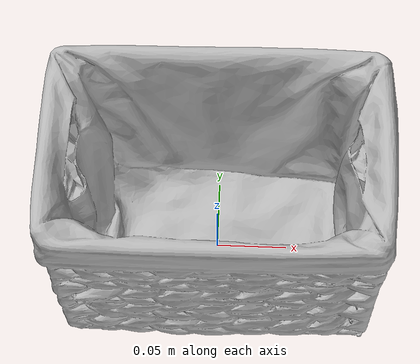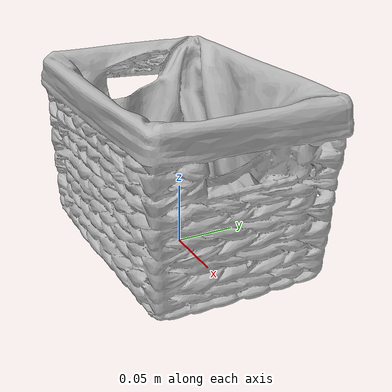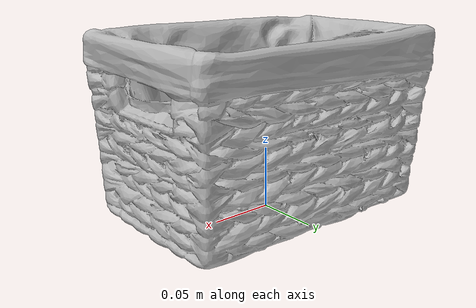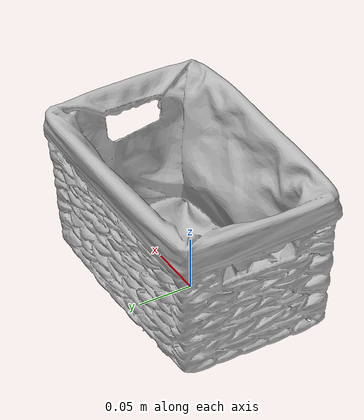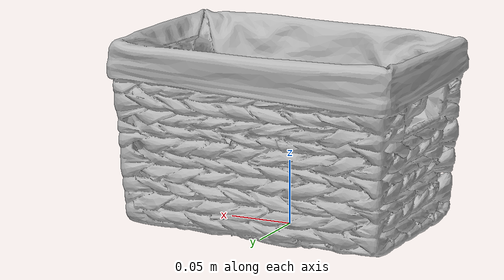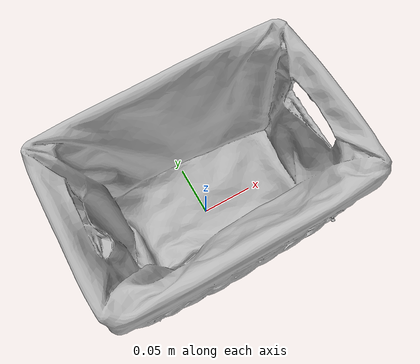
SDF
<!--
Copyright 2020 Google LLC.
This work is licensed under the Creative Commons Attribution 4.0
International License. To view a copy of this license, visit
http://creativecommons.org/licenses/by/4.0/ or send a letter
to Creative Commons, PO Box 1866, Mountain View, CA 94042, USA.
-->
<?xml version="1.0" ?>
<sdf version="1.6">
  <model name="Threshold_Basket_Natural_Finish_Fabric_Liner_Small">
    <link name="link_0">
      <visual name="visual">
        <geometry>
          <mesh>
            <uri>meshes/model.obj</uri>
          </mesh>
        </geometry>
      </visual>
      <collision name="collision_0">
        <geometry>
          <mesh>
            <uri>meshes/model.obj</uri>
          </mesh>
        </geometry>
      </collision>
    </link>
  </model>
</sdf>
